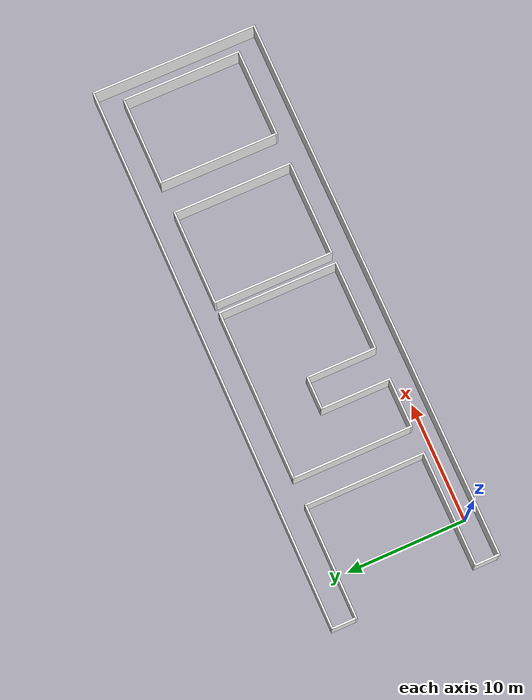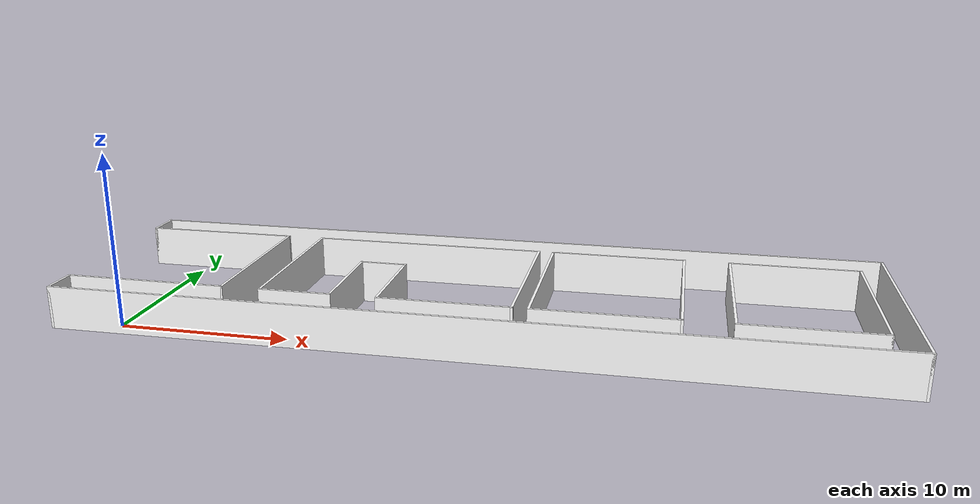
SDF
<?xml version='1.0'?>
<sdf version='1.6'>
  <model name='tdu_1-13_corridor'>
    <pose frame=''>19.65 6 0 0 -0 0</pose>
      <link name='Wall_0'>
      <collision name='Wall_0_Collision'>
        <geometry>
          <box>
            <size>46.85 0.15 2.5</size>
          </box>
        </geometry>
        <pose frame=''>0 0 1.25 0 -0 0</pose>
      </collision>
      <visual name='Wall_0_Visual'>
        <pose frame=''>0 0 1.25 0 -0 0</pose>
        <geometry>
          <box>
            <size>46.85 0.15 2.5</size>
          </box>
        </geometry>
        <material>
          <script>
            <uri>model://tdu_1-13_corridor/materials/scripts/wall_0.material</uri>
            <name>tdu_1-13_corridor/wall_0</name>
          </script>
          <ambient>1 1 1 1</ambient>
        </material>
      </visual>
      <pose frame=''>-1e-06 -7 0 0 -0 0</pose>
    </link>
    <link name='Wall_10'>
      <collision name='Wall_10_Collision'>
        <geometry>
          <box>
            <size>5.95 0.15 2.5</size>
          </box>
        </geometry>
        <pose frame=''>0 0 1.25 0 -0 0</pose>
      </collision>
      <visual name='Wall_10_Visual'>
        <pose frame=''>0 0 1.25 0 -0 0</pose>
        <geometry>
          <box>
            <size>5.95 0.15 2.5</size>
          </box>
        </geometry>
        <material>
          <script>
            <uri>model://tdu_1-13_corridor/materials/scripts/wall_1.material</uri>
            <name>tdu_1-13_corridor/wall_1</name>
          </script>
          <ambient>1 1 1 1</ambient>
        </material>
      </visual>
      <pose frame=''>-7.45 -2.1 0 0 -0 1.5708</pose>
    </link>
    <link name='Wall_15'>
      <collision name='Wall_15_Collision'>
        <geometry>
          <box>
            <size>9.65 0.15 2.5</size>
          </box>
        </geometry>
        <pose frame=''>0 0 1.25 0 -0 0</pose>
      </collision>
      <visual name='Wall_15_Visual'>
        <pose frame=''>0 0 1.25 0 -0 0</pose>
        <geometry>
          <box>
            <size>9.65 0.15 2.5</size>
          </box>
        </geometry>
        <material>
          <script>
            <uri>model://tdu_1-13_corridor/materials/scripts/wall_2.material</uri>
            <name>tdu_1-13_corridor/wall_2</name>
          </script>
          <ambient>1 1 1 1</ambient>
        </material>
      </visual>
      <pose frame=''>-18.6 -5 0 0 -0 0</pose>
    </link>
    <link name='Wall_23'>
      <collision name='Wall_23_Collision'>
        <geometry>
          <box>
            <size>2.15 0.15 2.5</size>
          </box>
        </geometry>
        <pose frame=''>0 0 1.25 0 -0 0</pose>
      </collision>
      <visual name='Wall_23_Visual'>
        <pose frame=''>0 0 1.25 0 -0 0</pose>
        <geometry>
          <box>
            <size>2.15 0.15 2.5</size>
          </box>
        </geometry>
        <material>
          <script>
            <uri>model://tdu_1-13_corridor/materials/scripts/wall_3.material</uri>
            <name>tdu_1-13_corridor/wall_3</name>
          </script>
          <ambient>1 1 1 1</ambient>
        </material>
      </visual>
      <pose frame=''>-23.35 -6 0 0 -0 1.5708</pose>
    </link>
    <link name='Wall_25'>
      <collision name='Wall_25_Collision'>
        <geometry>
          <box>
            <size>7.65 0.15 2.5</size>
          </box>
        </geometry>
        <pose frame=''>0 0 1.25 0 -0 0</pose>
      </collision>
      <visual name='Wall_25_Visual'>
        <pose frame=''>0 0 1.25 0 -0 0</pose>
        <geometry>
          <box>
            <size>7.65 0.15 2.5</size>
          </box>
        </geometry>
        <material>
          <script>
            <uri>model://tdu_1-13_corridor/materials/scripts/wall_4.material</uri>
            <name>tdu_1-13_corridor/wall_4</name>
          </script>
          <ambient>1 1 1 1</ambient>
        </material>
      </visual>
      <pose frame=''>18.1 -5 0 0 -0 0</pose>
    </link>
    <link name='Wall_28'>
      <collision name='Wall_28_Collision'>
        <geometry>
          <box>
            <size>10.15 0.15 2.5</size>
          </box>
        </geometry>
        <pose frame=''>0 0 1.25 0 -0 0</pose>
      </collision>
      <visual name='Wall_28_Visual'>
        <pose frame=''>0 0 1.25 0 -0 0</pose>
        <geometry>
          <box>
            <size>10.15 0.15 2.5</size>
          </box>
        </geometry>
        <material>
          <script>
            <uri>model://tdu_1-13_corridor/materials/scripts/wall_5.material</uri>
            <name>tdu_1-13_corridor/wall_5</name>
          </script>
          <ambient>1 1 1 1</ambient>
        </material>
      </visual>
      <pose frame=''>-11.55 0 0 0 -0 1.5708</pose>
    </link>
    <link name='Wall_31'>
      <collision name='Wall_31_Collision'>
        <geometry>
          <box>
            <size>8.15 0.15 2.5</size>
          </box>
        </geometry>
        <pose frame=''>0 0 1.25 0 -0 0</pose>
      </collision>
      <visual name='Wall_31_Visual'>
        <pose frame=''>0 0 1.25 0 -0 0</pose>
        <geometry>
          <box>
            <size>8.15 0.15 2.5</size>
          </box>
        </geometry>
        <material>
          <script>
            <uri>model://tdu_1-13_corridor/materials/scripts/wall_6.material</uri>
            <name>tdu_1-13_corridor/wall_6</name>
          </script>
          <ambient>1 1 1 1</ambient>
        </material>
      </visual>
      <pose frame=''>7.65 5 0 0 -0 0</pose>
    </link>
    <link name='Wall_34'>
      <collision name='Wall_34_Collision'>
        <geometry>
          <box>
            <size>5.95 0.15 2.5</size>
          </box>
        </geometry>
        <pose frame=''>0 0 1.25 0 -0 0</pose>
      </collision>
      <visual name='Wall_34_Visual'>
        <pose frame=''>0 0 1.25 0 -0 0</pose>
        <geometry>
          <box>
            <size>5.95 0.15 2.5</size>
          </box>
        </geometry>
        <material>
          <script>
            <uri>model://tdu_1-13_corridor/materials/scripts/wall_7.material</uri>
            <name>tdu_1-13_corridor/wall_7</name>
          </script>
          <ambient>1 1 1 1</ambient>
        </material>
      </visual>
      <pose frame=''>-4.75 -2.1 0 0 0 -1.5708</pose>
    </link>
    <link name='Wall_36'>
      <collision name='Wall_36_Collision'>
        <geometry>
          <box>
            <size>10.15 0.15 2.5</size>
          </box>
        </geometry>
        <pose frame=''>0 0 1.25 0 -0 0</pose>
      </collision>
      <visual name='Wall_36_Visual'>
        <pose frame=''>0 0 1.25 0 -0 0</pose>
        <geometry>
          <box>
            <size>10.15 0.15 2.5</size>
          </box>
        </geometry>
        <material>
          <script>
            <uri>model://tdu_1-13_corridor/materials/scripts/wall_8.material</uri>
            <name>tdu_1-13_corridor/wall_8</name>
          </script>
          <ambient>1 1 1 1</ambient>
        </material>
      </visual>
      <pose frame=''>11.65 0 0 0 0 -1.5708</pose>
    </link>
    <link name='Wall_41'>
      <collision name='Wall_41_Collision'>
        <geometry>
          <box>
            <size>10.15 0.15 2.5</size>
          </box>
        </geometry>
        <pose frame=''>0 0 1.25 0 -0 0</pose>
      </collision>
      <visual name='Wall_41_Visual'>
        <pose frame=''>0 0 1.25 0 -0 0</pose>
        <geometry>
          <box>
            <size>10.15 0.15 2.5</size>
          </box>
        </geometry>
        <material>
          <script>
            <uri>model://tdu_1-13_corridor/materials/scripts/wall_9.material</uri>
            <name>tdu_1-13_corridor/wall_9</name>
          </script>
          <ambient>1 1 1 1</ambient>
        </material>
      </visual>
      <pose frame=''>2.75 0 0 0 0 -1.5708</pose>
    </link>
    <link name='Wall_43'>
      <collision name='Wall_43_Collision'>
        <geometry>
          <box>
            <size>10.15 0.15 2.5</size>
          </box>
        </geometry>
        <pose frame=''>0 0 1.25 0 -0 0</pose>
      </collision>
      <visual name='Wall_43_Visual'>
        <pose frame=''>0 0 1.25 0 -0 0</pose>
        <geometry>
          <box>
            <size>10.15 0.15 2.5</size>
          </box>
        </geometry>
        <material>
          <script>
            <uri>model://tdu_1-13_corridor/materials/scripts/wall_10.material</uri>
            <name>tdu_1-13_corridor/wall_10</name>
          </script>
          <ambient>1 1 1 1</ambient>
        </material>
      </visual>
      <pose frame=''>14.35 0 0 0 -0 1.5708</pose>
    </link>
    <link name='Wall_49'>
      <collision name='Wall_49_Collision'>
        <geometry>
          <box>
            <size>7.65 0.15 2.5</size>
          </box>
        </geometry>
        <pose frame=''>0 0 1.25 0 -0 0</pose>
      </collision>
      <visual name='Wall_49_Visual'>
        <pose frame=''>0 0 1.25 0 -0 0</pose>
        <geometry>
          <box>
            <size>7.65 0.15 2.5</size>
          </box>
        </geometry>
        <material>
          <script>
            <uri>model://tdu_1-13_corridor/materials/scripts/wall_11.material</uri>
            <name>tdu_1-13_corridor/wall_11</name>
          </script>
          <ambient>1 1 1 1</ambient>
        </material>
      </visual>
      <pose frame=''>18.1 5 0 0 -0 0</pose>
    </link>
    <link name='Wall_57'>
      <collision name='Wall_57_Collision'>
        <geometry>
          <box>
            <size>7.65 0.15 2.5</size>
          </box>
        </geometry>
        <pose frame=''>0 0 1.25 0 -0 0</pose>
      </collision>
      <visual name='Wall_57_Visual'>
        <pose frame=''>0 0 1.25 0 -0 0</pose>
        <geometry>
          <box>
            <size>7.65 0.15 2.5</size>
          </box>
        </geometry>
        <material>
          <script>
            <uri>model://tdu_1-13_corridor/materials/scripts/wall_12.material</uri>
            <name>tdu_1-13_corridor/wall_12</name>
          </script>
          <ambient>1 1 1 1</ambient>
        </material>
      </visual>
      <pose frame=''>-1 -5 0 0 -0 0</pose>
    </link>
    <link name='Wall_61'>
      <collision name='Wall_61_Collision'>
        <geometry>
          <box>
            <size>2.85 0.15 2.5</size>
          </box>
        </geometry>
        <pose frame=''>0 0 1.25 0 -0 0</pose>
      </collision>
      <visual name='Wall_61_Visual'>
        <pose frame=''>0 0 1.25 0 -0 0</pose>
        <geometry>
          <box>
            <size>2.85 0.15 2.5</size>
          </box>
        </geometry>
        <material>
          <script>
            <uri>model://tdu_1-13_corridor/materials/scripts/wall_13.material</uri>
            <name>tdu_1-13_corridor/wall_13</name>
          </script>
          <ambient>1 1 1 1</ambient>
        </material>
      </visual>
      <pose frame=''>-6.1 0.8 0 0 -0 0</pose>
    </link>
    <link name='Wall_63'>
      <collision name='Wall_63_Collision'>
        <geometry>
          <box>
            <size>10.15 0.15 2.5</size>
          </box>
        </geometry>
        <pose frame=''>0 0 1.25 0 -0 0</pose>
      </collision>
      <visual name='Wall_63_Visual'>
        <pose frame=''>0 0 1.25 0 -0 0</pose>
        <geometry>
          <box>
            <size>10.15 0.15 2.5</size>
          </box>
        </geometry>
        <material>
          <script>
            <uri>model://tdu_1-13_corridor/materials/scripts/wall_14.material</uri>
            <name>tdu_1-13_corridor/wall_14</name>
          </script>
          <ambient>1 1 1 1</ambient>
        </material>
      </visual>
      <pose frame=''>3.65 0 0 0 0 -1.5708</pose>
    </link>
    <link name='Wall_65'>
      <collision name='Wall_65_Collision'>
        <geometry>
          <box>
            <size>14.45 0.15 2.5</size>
          </box>
        </geometry>
        <pose frame=''>0 0 1.25 0 -0 0</pose>
      </collision>
      <visual name='Wall_65_Visual'>
        <pose frame=''>0 0 1.25 0 -0 0</pose>
        <geometry>
          <box>
            <size>14.45 0.15 2.5</size>
          </box>
        </geometry>
        <material>
          <script>
            <uri>model://tdu_1-13_corridor/materials/scripts/wall_15.material</uri>
            <name>tdu_1-13_corridor/wall_15</name>
          </script>
          <ambient>1 1 1 1</ambient>
        </material>
      </visual>
      <pose frame=''>-4.4 5 0 0 -0 0</pose>
    </link>
    <link name='Wall_69'>
      <collision name='Wall_69_Collision'>
        <geometry>
          <box>
            <size>4.25 0.15 2.5</size>
          </box>
        </geometry>
        <pose frame=''>0 0 1.25 0 -0 0</pose>
      </collision>
      <visual name='Wall_69_Visual'>
        <pose frame=''>0 0 1.25 0 -0 0</pose>
        <geometry>
          <box>
            <size>4.25 0.15 2.5</size>
          </box>
        </geometry>
        <material>
          <script>
            <uri>model://tdu_1-13_corridor/materials/scripts/wall_16.material</uri>
            <name>tdu_1-13_corridor/wall_16</name>
          </script>
          <ambient>1 1 1 1</ambient>
        </material>
      </visual>
      <pose frame=''>-9.5 -5 0 0 -0 0</pose>
    </link>
    <link name='Wall_71'>
      <collision name='Wall_71_Collision'>
        <geometry>
          <box>
            <size>8.15 0.15 2.5</size>
          </box>
        </geometry>
        <pose frame=''>0 0 1.25 0 -0 0</pose>
      </collision>
      <visual name='Wall_71_Visual'>
        <pose frame=''>0 0 1.25 0 -0 0</pose>
        <geometry>
          <box>
            <size>8.15 0.15 2.5</size>
          </box>
        </geometry>
        <material>
          <script>
            <uri>model://tdu_1-13_corridor/materials/scripts/wall_17.material</uri>
            <name>tdu_1-13_corridor/wall_17</name>
          </script>
          <ambient>1 1 1 1</ambient>
        </material>
      </visual>
      <pose frame=''>7.65 -5 0 0 -0 0</pose>
    </link>
    <link name='Wall_73'>
      <collision name='Wall_73_Collision'>
        <geometry>
          <box>
            <size>46.85 0.15 2.5</size>
          </box>
        </geometry>
        <pose frame=''>0 0 1.25 0 -0 0</pose>
      </collision>
      <visual name='Wall_73_Visual'>
        <pose frame=''>0 0 1.25 0 -0 0</pose>
        <geometry>
          <box>
            <size>46.85 0.15 2.5</size>
          </box>
        </geometry>
        <material>
          <script>
            <uri>model://tdu_1-13_corridor/materials/scripts/wall_18.material</uri>
            <name>tdu_1-13_corridor/wall_18</name>
          </script>
          <ambient>1 1 1 1</ambient>
        </material>
      </visual>
      <pose frame=''>-1e-06 7 0 0 -0 0</pose>
    </link>
    <link name='Wall_78'>
      <collision name='Wall_78_Collision'>
        <geometry>
          <box>
            <size>10.15 0.15 2.5</size>
          </box>
        </geometry>
        <pose frame=''>0 0 1.25 0 -0 0</pose>
      </collision>
      <visual name='Wall_78_Visual'>
        <pose frame=''>0 0 1.25 0 -0 0</pose>
        <geometry>
          <box>
            <size>10.15 0.15 2.5</size>
          </box>
        </geometry>
        <material>
          <script>
            <uri>model://tdu_1-13_corridor/materials/scripts/wall_19.material</uri>
            <name>tdu_1-13_corridor/wall_19</name>
          </script>
          <ambient>1 1 1 1</ambient>
        </material>
      </visual>
      <pose frame=''>-13.85 0 0 0 -0 1.5708</pose>
    </link>
    <link name='Wall_81'>
      <collision name='Wall_81_Collision'>
        <geometry>
          <box>
            <size>9.65 0.15 2.5</size>
          </box>
        </geometry>
        <pose frame=''>0 0 1.25 0 -0 0</pose>
      </collision>
      <visual name='Wall_81_Visual'>
        <pose frame=''>0 0 1.25 0 -0 0</pose>
        <geometry>
          <box>
            <size>9.65 0.15 2.5</size>
          </box>
        </geometry>
        <material>
          <script>
            <uri>model://tdu_1-13_corridor/materials/scripts/wall_20.material</uri>
            <name>tdu_1-13_corridor/wall_20</name>
          </script>
          <ambient>1 1 1 1</ambient>
        </material>
      </visual>
      <pose frame=''>-18.6 5 0 0 -0 0</pose>
    </link>
    <link name='Wall_90'>
      <collision name='Wall_90_Collision'>
        <geometry>
          <box>
            <size>2.15 0.15 2.5</size>
          </box>
        </geometry>
        <pose frame=''>0 0 1.25 0 -0 0</pose>
      </collision>
      <visual name='Wall_90_Visual'>
        <pose frame=''>0 0 1.25 0 -0 0</pose>
        <geometry>
          <box>
            <size>2.15 0.15 2.5</size>
          </box>
        </geometry>
        <material>
          <script>
            <uri>model://tdu_1-13_corridor/materials/scripts/wall_21.material</uri>
            <name>tdu_1-13_corridor/wall_21</name>
          </script>
          <ambient>1 1 1 1</ambient>
        </material>
      </visual>
      <pose frame=''>-23.35 6 0 0 -0 1.5708</pose>
    </link>
    <link name='Wall_93'>
      <collision name='Wall_93_Collision'>
        <geometry>
          <box>
            <size>10.15 0.15 2.5</size>
          </box>
        </geometry>
        <pose frame=''>0 0 1.25 0 -0 0</pose>
      </collision>
      <visual name='Wall_93_Visual'>
        <pose frame=''>0 0 1.25 0 -0 0</pose>
        <geometry>
          <box>
            <size>10.15 0.15 2.5</size>
          </box>
        </geometry>
        <material>
          <script>
            <uri>model://tdu_1-13_corridor/materials/scripts/wall_22.material</uri>
            <name>tdu_1-13_corridor/wall_22</name>
          </script>
          <ambient>1 1 1 1</ambient>
        </material>
      </visual>
      <pose frame=''>21.85 0 0 0 -0 1.5708</pose>
    </link>
    <link name='Wall_96'>
      <collision name='Wall_96_Collision'>
        <geometry>
          <box>
            <size>14.15 0.15 2.5</size>
          </box>
        </geometry>
        <pose frame=''>0 0 1.25 0 -0 0</pose>
      </collision>
      <visual name='Wall_96_Visual'>
        <pose frame=''>0 0 1.25 0 -0 0</pose>
        <geometry>
          <box>
            <size>14.15 0.15 2.5</size>
          </box>
        </geometry>
        <material>
          <script>
            <uri>model://tdu_1-13_corridor/materials/scripts/wall_23.material</uri>
            <name>tdu_1-13_corridor/wall_23</name>
          </script>
          <ambient>1 1 1 1</ambient>
        </material>
      </visual>
      <pose frame=''>23.35 0 0 0 -0 1.5708</pose>
    </link>
    <static>1</static>
  </model>
</sdf>
